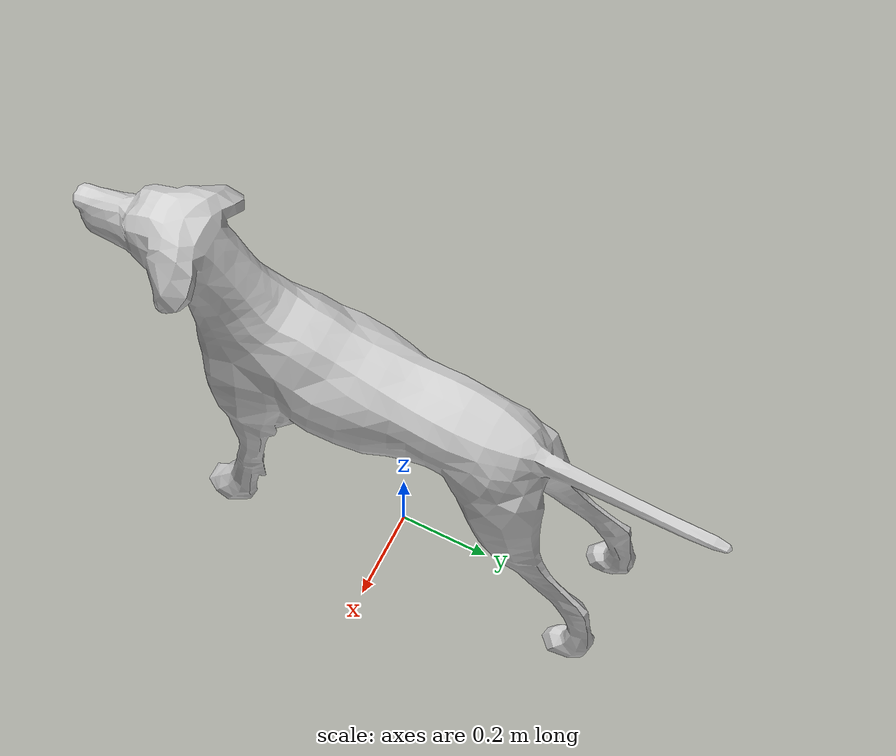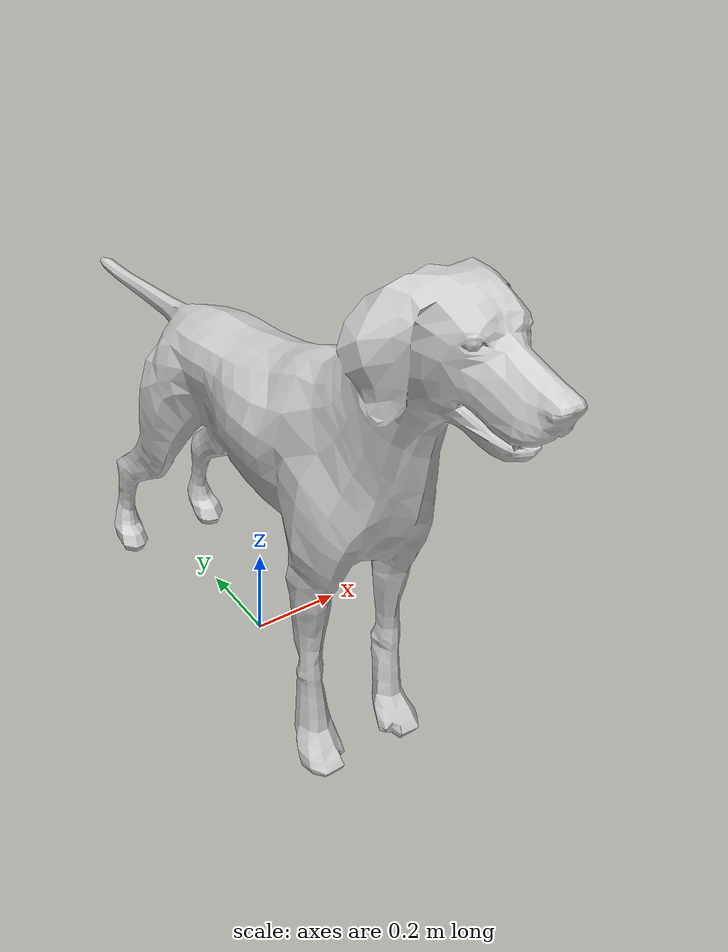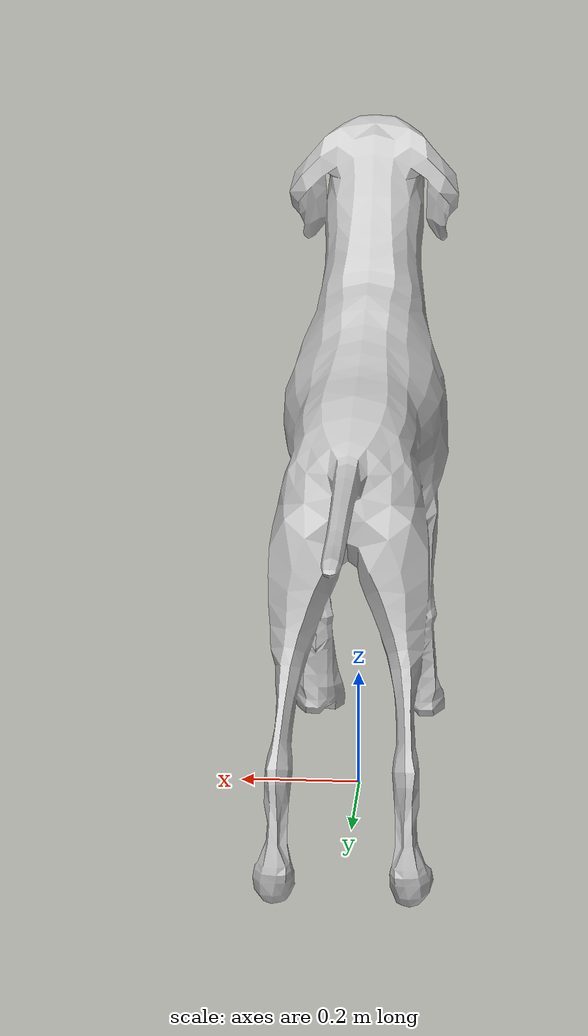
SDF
<?xml version="1.0" ?>
<sdf version="1.5">
  <model name="Dog">
    <static>true</static>
    <link name="link">
      <collision name="collision">
        <geometry>
          <mesh>
            <uri>model://dog/meshes/dog.dae</uri>
          </mesh>
        </geometry>
      </collision>
      <visual name="visual">
        <geometry>
          <mesh>
            <uri>model://dog/meshes/dog.dae</uri>
          </mesh>
        </geometry>
      </visual>
    </link>
  </model>
</sdf>
